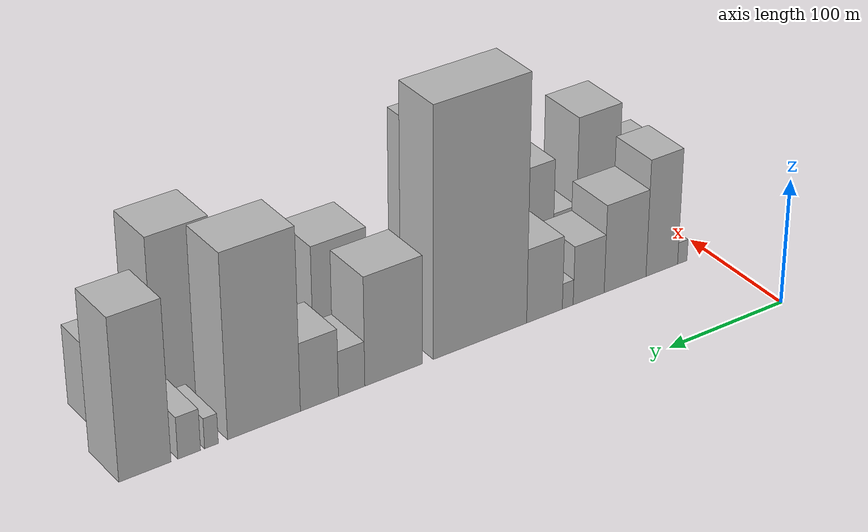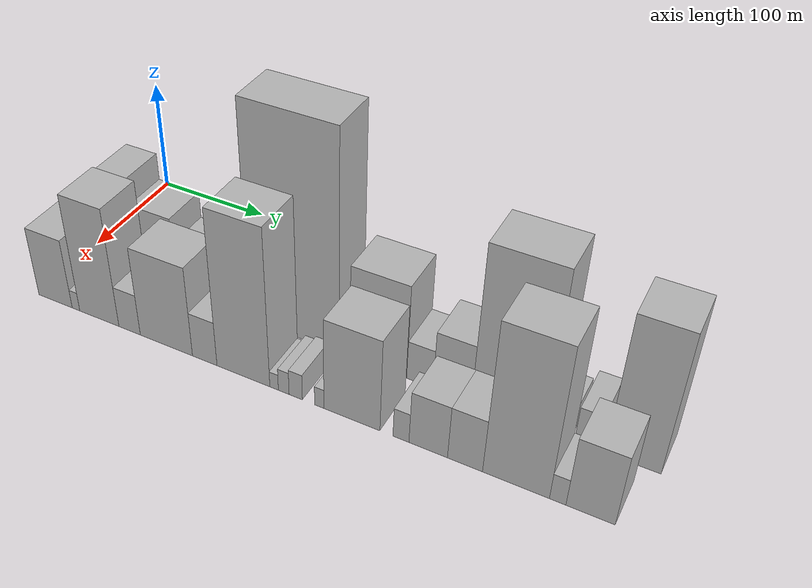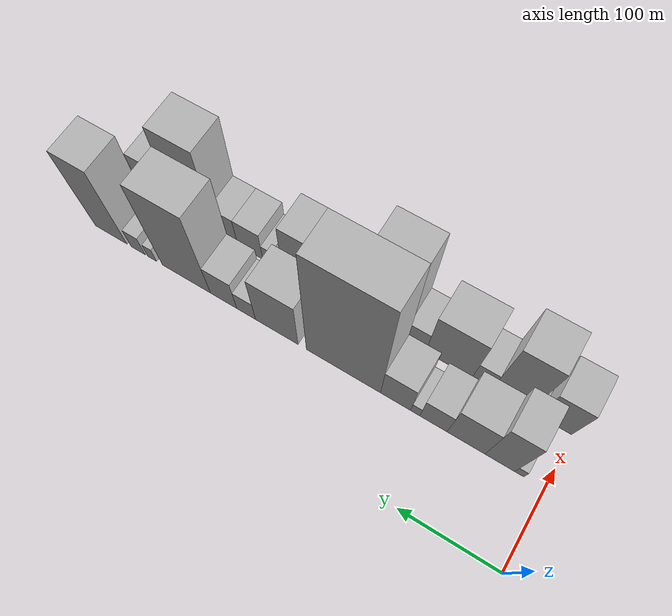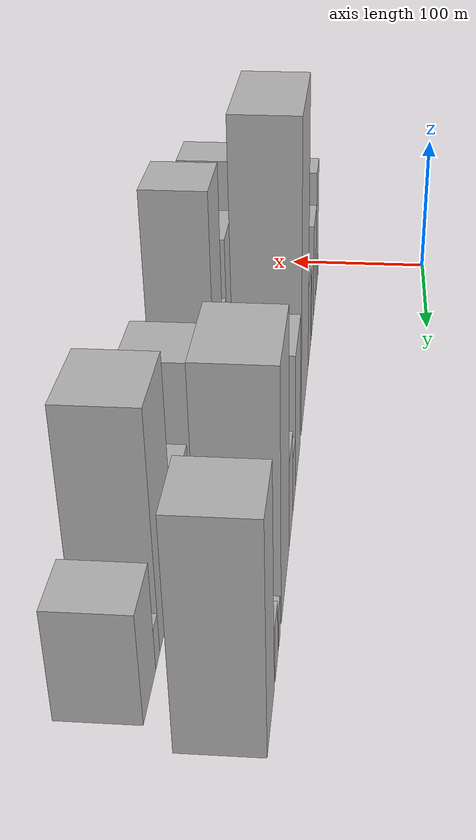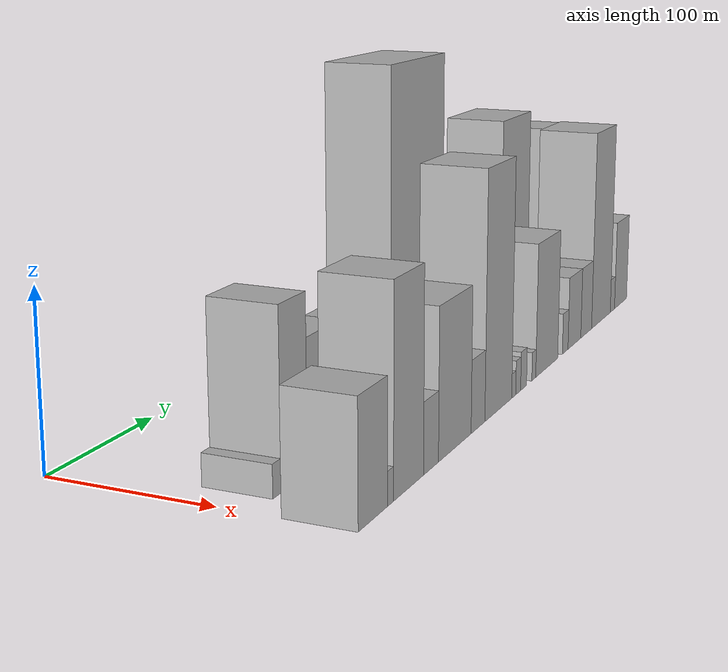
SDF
<sdf version="1.6">
 <world name="default">
  <model name="building_16">
   <static>1</static>
   <pose>100.0000 24.2655 0 0.000000 0.000000 0.000000</pose>
   <link name="link">
    <pose>0 0 9.00 0 0 0</pose>
    <collision name="collision"><geometry><box><size>40.0000 8.6766 18.0000</size></box></geometry></collision>
    <visual name="visual">
     <cast_shadows>0</cast_shadows>
     <geometry><box><size>40.0000 8.6766 18.0000</size></box></geometry>
     <material>
      <script>
       <uri>model://HANNAS_wall/materials/scripts</uri>
       <uri>model://HANNAS_wall/materials/textures</uri>
       <name>vrc/HANNAS_wall</name>
      </script>
     </material>
    </visual>
   </link>
  </model>
  <model name="building_17">
   <static>1</static>
   <pose>100.0000 43.0093 0 0.000000 0.000000 0.000000</pose>
   <link name="link">
    <pose>0 0 48.00 0 0 0</pose>
    <collision name="collision"><geometry><box><size>40.0000 28.8110 96.0000</size></box></geometry></collision>
    <visual name="visual">
     <cast_shadows>0</cast_shadows>
     <geometry><box><size>40.0000 28.8110 96.0000</size></box></geometry>
     <material>
      <script>
       <uri>model://HANNAS_wall/materials/scripts</uri>
       <uri>model://HANNAS_wall/materials/textures</uri>
       <name>vrc/HANNAS_wall</name>
      </script>
     </material>
    </visual>
   </link>
  </model>
  <model name="building_18">
   <static>1</static>
   <pose>100.0000 76.1650 0 0.000000 0.000000 0.000000</pose>
   <link name="link">
    <pose>0 0 36.00 0 0 0</pose>
    <collision name="collision"><geometry><box><size>40.0000 37.5004 72.0000</size></box></geometry></collision>
    <visual name="visual">
     <cast_shadows>0</cast_shadows>
     <geometry><box><size>40.0000 37.5004 72.0000</size></box></geometry>
     <material>
      <script>
       <uri>model://HANNAS_wall/materials/scripts</uri>
       <uri>model://HANNAS_wall/materials/textures</uri>
       <name>vrc/HANNAS_wall</name>
      </script>
     </material>
    </visual>
   </link>
  </model>
  <model name="building_19">
   <static>1</static>
   <pose>100.0000 108.5897 0 0.000000 0.000000 0.000000</pose>
   <link name="link">
    <pose>0 0 24.00 0 0 0</pose>
    <collision name="collision"><geometry><box><size>40.0000 27.3489 48.0000</size></box></geometry></collision>
    <visual name="visual">
     <cast_shadows>0</cast_shadows>
     <geometry><box><size>40.0000 27.3489 48.0000</size></box></geometry>
     <material>
      <script>
       <uri>model://HANNAS_wall/materials/scripts</uri>
       <uri>model://HANNAS_wall/materials/textures</uri>
       <name>vrc/HANNAS_wall</name>
      </script>
     </material>
    </visual>
   </link>
  </model>
  <model name="building_20">
   <static>1</static>
   <pose>100.0000 126.9915 0 0.000000 0.000000 0.000000</pose>
   <link name="link">
    <pose>0 0 10.50 0 0 0</pose>
    <collision name="collision"><geometry><box><size>40.0000 9.4548 21.0000</size></box></geometry></collision>
    <visual name="visual">
     <cast_shadows>0</cast_shadows>
     <geometry><box><size>40.0000 9.4548 21.0000</size></box></geometry>
     <material>
      <script>
       <uri>model://HANNAS_wall/materials/scripts</uri>
       <uri>model://HANNAS_wall/materials/textures</uri>
       <name>vrc/HANNAS_wall</name>
      </script>
     </material>
    </visual>
   </link>
  </model>
  <model name="building_21">
   <static>1</static>
   <pose>100.0000 147.1534 0 0.000000 0.000000 0.000000</pose>
   <link name="link">
    <pose>0 0 30.00 0 0 0</pose>
    <collision name="collision"><geometry><box><size>40.0000 30.8690 60.0000</size></box></geometry></collision>
    <visual name="visual">
     <cast_shadows>0</cast_shadows>
     <geometry><box><size>40.0000 30.8690 60.0000</size></box></geometry>
     <material>
      <script>
       <uri>model://HANNAS_wall/materials/scripts</uri>
       <uri>model://HANNAS_wall/materials/textures</uri>
       <name>vrc/HANNAS_wall</name>
      </script>
     </material>
    </visual>
   </link>
  </model>
  <model name="building_22">
   <static>1</static>
   <pose>100.0000 201.8062 0 0.000000 0.000000 0.000000</pose>
   <link name="link">
    <pose>0 0 99.00 0 0 0</pose>
    <collision name="collision"><geometry><box><size>40.0000 78.4366 198.0000</size></box></geometry></collision>
    <visual name="visual">
     <cast_shadows>0</cast_shadows>
     <geometry><box><size>40.0000 78.4366 198.0000</size></box></geometry>
     <material>
      <script>
       <uri>model://HANNAS_wall/materials/scripts</uri>
       <uri>model://HANNAS_wall/materials/textures</uri>
       <name>vrc/HANNAS_wall</name>
      </script>
     </material>
    </visual>
   </link>
  </model>
  <model name="building_23">
   <static>1</static>
   <pose>100.0000 273.3668 0 0.000000 0.000000 0.000000</pose>
   <link name="link">
    <pose>0 0 43.50 0 0 0</pose>
    <collision name="collision"><geometry><box><size>40.0000 46.6846 87.0000</size></box></geometry></collision>
    <visual name="visual">
     <cast_shadows>0</cast_shadows>
     <geometry><box><size>40.0000 46.6846 87.0000</size></box></geometry>
     <material>
      <script>
       <uri>model://HANNAS_wall/materials/scripts</uri>
       <uri>model://HANNAS_wall/materials/textures</uri>
       <name>vrc/HANNAS_wall</name>
      </script>
     </material>
    </visual>
   </link>
  </model>
  <model name="building_24">
   <static>1</static>
   <pose>100.0000 307.2393 0 0.000000 0.000000 0.000000</pose>
   <link name="link">
    <pose>0 0 18.00 0 0 0</pose>
    <collision name="collision"><geometry><box><size>40.0000 21.0604 36.0000</size></box></geometry></collision>
    <visual name="visual">
     <cast_shadows>0</cast_shadows>
     <geometry><box><size>40.0000 21.0604 36.0000</size></box></geometry>
     <material>
      <script>
       <uri>model://HANNAS_wall/materials/scripts</uri>
       <uri>model://HANNAS_wall/materials/textures</uri>
       <name>vrc/HANNAS_wall</name>
      </script>
     </material>
    </visual>
   </link>
  </model>
  <model name="building_25">
   <static>1</static>
   <pose>100.0000 332.6892 0 0.000000 0.000000 0.000000</pose>
   <link name="link">
    <pose>0 0 27.00 0 0 0</pose>
    <collision name="collision"><geometry><box><size>40.0000 29.8393 54.0000</size></box></geometry></collision>
    <visual name="visual">
     <cast_shadows>0</cast_shadows>
     <geometry><box><size>40.0000 29.8393 54.0000</size></box></geometry>
     <material>
      <script>
       <uri>model://HANNAS_wall/materials/scripts</uri>
       <uri>model://HANNAS_wall/materials/textures</uri>
       <name>vrc/HANNAS_wall</name>
      </script>
     </material>
    </visual>
   </link>
  </model>
  <model name="building_26">
   <static>1</static>
   <pose>100.0000 375.5573 0 0.000000 0.000000 0.000000</pose>
   <link name="link">
    <pose>0 0 72.00 0 0 0</pose>
    <collision name="collision"><geometry><box><size>40.0000 55.8970 144.0000</size></box></geometry></collision>
    <visual name="visual">
     <cast_shadows>0</cast_shadows>
     <geometry><box><size>40.0000 55.8970 144.0000</size></box></geometry>
     <material>
      <script>
       <uri>model://HANNAS_wall/materials/scripts</uri>
       <uri>model://HANNAS_wall/materials/textures</uri>
       <name>vrc/HANNAS_wall</name>
      </script>
     </material>
    </visual>
   </link>
  </model>
  <model name="building_27">
   <static>1</static>
   <pose>100.0000 415.6739 0 0.000000 0.000000 0.000000</pose>
   <link name="link">
    <pose>0 0 12.00 0 0 0</pose>
    <collision name="collision"><geometry><box><size>40.0000 10.3362 24.0000</size></box></geometry></collision>
    <visual name="visual">
     <cast_shadows>0</cast_shadows>
     <geometry><box><size>40.0000 10.3362 24.0000</size></box></geometry>
     <material>
      <script>
       <uri>model://HANNAS_wall/materials/scripts</uri>
       <uri>model://HANNAS_wall/materials/textures</uri>
       <name>vrc/HANNAS_wall</name>
      </script>
     </material>
    </visual>
   </link>
  </model>
  <model name="building_28">
   <static>1</static>
   <pose>100.0000 432.2948 0 0.000000 0.000000 0.000000</pose>
   <link name="link">
    <pose>0 0 16.50 0 0 0</pose>
    <collision name="collision"><geometry><box><size>40.0000 16.9056 33.0000</size></box></geometry></collision>
    <visual name="visual">
     <cast_shadows>0</cast_shadows>
     <geometry><box><size>40.0000 16.9056 33.0000</size></box></geometry>
     <material>
      <script>
       <uri>model://HANNAS_wall/materials/scripts</uri>
       <uri>model://HANNAS_wall/materials/textures</uri>
       <name>vrc/HANNAS_wall</name>
      </script>
     </material>
    </visual>
   </link>
  </model>
  <model name="building_29">
   <static>1</static>
   <pose>100.0000 464.8829 0 0.000000 0.000000 0.000000</pose>
   <link name="link">
    <pose>0 0 63.00 0 0 0</pose>
    <collision name="collision"><geometry><box><size>40.0000 38.2706 126.0000</size></box></geometry></collision>
    <visual name="visual">
     <cast_shadows>0</cast_shadows>
     <geometry><box><size>40.0000 38.2706 126.0000</size></box></geometry>
     <material>
      <script>
       <uri>model://HANNAS_wall/materials/scripts</uri>
       <uri>model://HANNAS_wall/materials/textures</uri>
       <name>vrc/HANNAS_wall</name>
      </script>
     </material>
    </visual>
   </link>
  </model>
  <model name="building_45">
   <static>1</static>
   <pose>155.0000 17.0346 0 0.000000 0.000000 0.000000</pose>
   <link name="link">
    <pose>0 0 33.00 0 0 0</pose>
    <collision name="collision"><geometry><box><size>40.0000 33.3527 66.0000</size></box></geometry></collision>
    <visual name="visual">
     <cast_shadows>0</cast_shadows>
     <geometry><box><size>40.0000 33.3527 66.0000</size></box></geometry>
     <material>
      <script>
       <uri>model://HANNAS_wall/materials/scripts</uri>
       <uri>model://HANNAS_wall/materials/textures</uri>
       <name>vrc/HANNAS_wall</name>
      </script>
     </material>
    </visual>
   </link>
  </model>
  <model name="building_46">
   <static>1</static>
   <pose>155.0000 37.4321 0 0.000000 0.000000 0.000000</pose>
   <link name="link">
    <pose>0 0 9.00 0 0 0</pose>
    <collision name="collision"><geometry><box><size>40.0000 7.4423 18.0000</size></box></geometry></collision>
    <visual name="visual">
     <cast_shadows>0</cast_shadows>
     <geometry><box><size>40.0000 7.4423 18.0000</size></box></geometry>
     <material>
      <script>
       <uri>model://HANNAS_wall/materials/scripts</uri>
       <uri>model://HANNAS_wall/materials/textures</uri>
       <name>vrc/HANNAS_wall</name>
      </script>
     </material>
    </visual>
   </link>
  </model>
  <model name="building_47">
   <static>1</static>
   <pose>155.0000 60.0776 0 0.000000 0.000000 0.000000</pose>
   <link name="link">
    <pose>0 0 55.50 0 0 0</pose>
    <collision name="collision"><geometry><box><size>40.0000 37.8486 111.0000</size></box></geometry></collision>
    <visual name="visual">
     <cast_shadows>0</cast_shadows>
     <geometry><box><size>40.0000 37.8486 111.0000</size></box></geometry>
     <material>
      <script>
       <uri>model://HANNAS_wall/materials/scripts</uri>
       <uri>model://HANNAS_wall/materials/textures</uri>
       <name>vrc/HANNAS_wall</name>
      </script>
     </material>
    </visual>
   </link>
  </model>
  <model name="building_48">
   <static>1</static>
   <pose>155.0000 89.0997 0 0.000000 0.000000 0.000000</pose>
   <link name="link">
    <pose>0 0 19.50 0 0 0</pose>
    <collision name="collision"><geometry><box><size>40.0000 20.1956 39.0000</size></box></geometry></collision>
    <visual name="visual">
     <cast_shadows>0</cast_shadows>
     <geometry><box><size>40.0000 20.1956 39.0000</size></box></geometry>
     <material>
      <script>
       <uri>model://HANNAS_wall/materials/scripts</uri>
       <uri>model://HANNAS_wall/materials/textures</uri>
       <name>vrc/HANNAS_wall</name>
      </script>
     </material>
    </visual>
   </link>
  </model>
  <model name="building_49">
   <static>1</static>
   <pose>155.0000 123.0417 0 0.000000 0.000000 0.000000</pose>
   <link name="link">
    <pose>0 0 42.00 0 0 0</pose>
    <collision name="collision"><geometry><box><size>40.0000 47.6884 84.0000</size></box></geometry></collision>
    <visual name="visual">
     <cast_shadows>0</cast_shadows>
     <geometry><box><size>40.0000 47.6884 84.0000</size></box></geometry>
     <material>
      <script>
       <uri>model://HANNAS_wall/materials/scripts</uri>
       <uri>model://HANNAS_wall/materials/textures</uri>
       <name>vrc/HANNAS_wall</name>
      </script>
     </material>
    </visual>
   </link>
  </model>
  <model name="building_50">
   <static>1</static>
   <pose>155.0000 157.7410 0 0.000000 0.000000 0.000000</pose>
   <link name="link">
    <pose>0 0 21.00 0 0 0</pose>
    <collision name="collision"><geometry><box><size>40.0000 21.7101 42.0000</size></box></geometry></collision>
    <visual name="visual">
     <cast_shadows>0</cast_shadows>
     <geometry><box><size>40.0000 21.7101 42.0000</size></box></geometry>
     <material>
      <script>
       <uri>model://HANNAS_wall/materials/scripts</uri>
       <uri>model://HANNAS_wall/materials/textures</uri>
       <name>vrc/HANNAS_wall</name>
      </script>
     </material>
    </visual>
   </link>
  </model>
  <model name="building_51">
   <static>1</static>
   <pose>155.0000 191.2912 0 0.000000 0.000000 0.000000</pose>
   <link name="link">
    <pose>0 0 72.00 0 0 0</pose>
    <collision name="collision"><geometry><box><size>40.0000 45.3903 144.0000</size></box></geometry></collision>
    <visual name="visual">
     <cast_shadows>0</cast_shadows>
     <geometry><box><size>40.0000 45.3903 144.0000</size></box></geometry>
     <material>
      <script>
       <uri>model://HANNAS_wall/materials/scripts</uri>
       <uri>model://HANNAS_wall/materials/textures</uri>
       <name>vrc/HANNAS_wall</name>
      </script>
     </material>
    </visual>
   </link>
  </model>
  <model name="building_52">
   <static>1</static>
   <pose>155.0000 217.5734 0 0.000000 0.000000 0.000000</pose>
   <link name="link">
    <pose>0 0 7.50 0 0 0</pose>
    <collision name="collision"><geometry><box><size>40.0000 7.1741 15.0000</size></box></geometry></collision>
    <visual name="visual">
     <cast_shadows>0</cast_shadows>
     <geometry><box><size>40.0000 7.1741 15.0000</size></box></geometry>
     <material>
      <script>
       <uri>model://HANNAS_wall/materials/scripts</uri>
       <uri>model://HANNAS_wall/materials/textures</uri>
       <name>vrc/HANNAS_wall</name>
      </script>
     </material>
    </visual>
   </link>
  </model>
  <model name="building_53">
   <static>1</static>
   <pose>155.0000 225.6127 0 0.000000 0.000000 0.000000</pose>
   <link name="link">
    <pose>0 0 10.50 0 0 0</pose>
    <collision name="collision"><geometry><box><size>40.0000 8.9045 21.0000</size></box></geometry></collision>
    <visual name="visual">
     <cast_shadows>0</cast_shadows>
     <geometry><box><size>40.0000 8.9045 21.0000</size></box></geometry>
     <material>
      <script>
       <uri>model://HANNAS_wall/materials/scripts</uri>
       <uri>model://HANNAS_wall/materials/textures</uri>
       <name>vrc/HANNAS_wall</name>
      </script>
     </material>
    </visual>
   </link>
  </model>
  <model name="building_54">
   <static>1</static>
   <pose>155.0000 235.5404 0 0.000000 0.000000 0.000000</pose>
   <link name="link">
    <pose>0 0 12.00 0 0 0</pose>
    <collision name="collision"><geometry><box><size>40.0000 10.9510 24.0000</size></box></geometry></collision>
    <visual name="visual">
     <cast_shadows>0</cast_shadows>
     <geometry><box><size>40.0000 10.9510 24.0000</size></box></geometry>
     <material>
      <script>
       <uri>model://HANNAS_wall/materials/scripts</uri>
       <uri>model://HANNAS_wall/materials/textures</uri>
       <name>vrc/HANNAS_wall</name>
      </script>
     </material>
    </visual>
   </link>
  </model>
  <model name="building_55">
   <static>1</static>
   <pose>155.0000 254.7776 0 0.000000 0.000000 0.000000</pose>
   <link name="link">
    <pose>0 0 9.00 0 0 0</pose>
    <collision name="collision"><geometry><box><size>40.0000 7.5234 18.0000</size></box></geometry></collision>
    <visual name="visual">
     <cast_shadows>0</cast_shadows>
     <geometry><box><size>40.0000 7.5234 18.0000</size></box></geometry>
     <material>
      <script>
       <uri>model://HANNAS_wall/materials/scripts</uri>
       <uri>model://HANNAS_wall/materials/textures</uri>
       <name>vrc/HANNAS_wall</name>
      </script>
     </material>
    </visual>
   </link>
  </model>
  <model name="building_56">
   <static>1</static>
   <pose>155.0000 280.6615 0 0.000000 0.000000 0.000000</pose>
   <link name="link">
    <pose>0 0 42.00 0 0 0</pose>
    <collision name="collision"><geometry><box><size>40.0000 44.2444 84.0000</size></box></geometry></collision>
    <visual name="visual">
     <cast_shadows>0</cast_shadows>
     <geometry><box><size>40.0000 44.2444 84.0000</size></box></geometry>
     <material>
      <script>
       <uri>model://HANNAS_wall/materials/scripts</uri>
       <uri>model://HANNAS_wall/materials/textures</uri>
       <name>vrc/HANNAS_wall</name>
      </script>
     </material>
    </visual>
   </link>
  </model>
  <model name="building_57">
   <static>1</static>
   <pose>155.0000 318.8714 0 0.000000 0.000000 0.000000</pose>
   <link name="link">
    <pose>0 0 13.50 0 0 0</pose>
    <collision name="collision"><geometry><box><size>40.0000 12.1755 27.0000</size></box></geometry></collision>
    <visual name="visual">
     <cast_shadows>0</cast_shadows>
     <geometry><box><size>40.0000 12.1755 27.0000</size></box></geometry>
     <material>
      <script>
       <uri>model://HANNAS_wall/materials/scripts</uri>
       <uri>model://HANNAS_wall/materials/textures</uri>
       <name>vrc/HANNAS_wall</name>
      </script>
     </material>
    </visual>
   </link>
  </model>
  <model name="building_58">
   <static>1</static>
   <pose>155.0000 339.3292 0 0.000000 0.000000 0.000000</pose>
   <link name="link">
    <pose>0 0 24.00 0 0 0</pose>
    <collision name="collision"><geometry><box><size>40.0000 28.7402 48.0000</size></box></geometry></collision>
    <visual name="visual">
     <cast_shadows>0</cast_shadows>
     <geometry><box><size>40.0000 28.7402 48.0000</size></box></geometry>
     <material>
      <script>
       <uri>model://HANNAS_wall/materials/scripts</uri>
       <uri>model://HANNAS_wall/materials/textures</uri>
       <name>vrc/HANNAS_wall</name>
      </script>
     </material>
    </visual>
   </link>
  </model>
  <model name="building_59">
   <static>1</static>
   <pose>155.0000 366.4249 0 0.000000 0.000000 0.000000</pose>
   <link name="link">
    <pose>0 0 24.00 0 0 0</pose>
    <collision name="collision"><geometry><box><size>40.0000 25.4513 48.0000</size></box></geometry></collision>
    <visual name="visual">
     <cast_shadows>0</cast_shadows>
     <geometry><box><size>40.0000 25.4513 48.0000</size></box></geometry>
     <material>
      <script>
       <uri>model://HANNAS_wall/materials/scripts</uri>
       <uri>model://HANNAS_wall/materials/textures</uri>
       <name>vrc/HANNAS_wall</name>
      </script>
     </material>
    </visual>
   </link>
  </model>
  <model name="building_60">
   <static>1</static>
   <pose>155.0000 402.5897 0 0.000000 0.000000 0.000000</pose>
   <link name="link">
    <pose>0 0 67.50 0 0 0</pose>
    <collision name="collision"><geometry><box><size>40.0000 46.8783 135.0000</size></box></geometry></collision>
    <visual name="visual">
     <cast_shadows>0</cast_shadows>
     <geometry><box><size>40.0000 46.8783 135.0000</size></box></geometry>
     <material>
      <script>
       <uri>model://HANNAS_wall/materials/scripts</uri>
       <uri>model://HANNAS_wall/materials/textures</uri>
       <name>vrc/HANNAS_wall</name>
      </script>
     </material>
    </visual>
   </link>
  </model>
  <model name="building_61">
   <static>1</static>
   <pose>155.0000 431.6239 0 0.000000 0.000000 0.000000</pose>
   <link name="link">
    <pose>0 0 12.00 0 0 0</pose>
    <collision name="collision"><geometry><box><size>40.0000 11.1899 24.0000</size></box></geometry></collision>
    <visual name="visual">
     <cast_shadows>0</cast_shadows>
     <geometry><box><size>40.0000 11.1899 24.0000</size></box></geometry>
     <material>
      <script>
       <uri>model://HANNAS_wall/materials/scripts</uri>
       <uri>model://HANNAS_wall/materials/textures</uri>
       <name>vrc/HANNAS_wall</name>
      </script>
     </material>
    </visual>
   </link>
  </model>
  <model name="building_62">
   <static>1</static>
   <pose>155.0000 453.6044 0 0.000000 0.000000 0.000000</pose>
   <link name="link">
    <pose>0 0 31.50 0 0 0</pose>
    <collision name="collision"><geometry><box><size>40.0000 32.7712 63.0000</size></box></geometry></collision>
    <visual name="visual">
     <cast_shadows>0</cast_shadows>
     <geometry><box><size>40.0000 32.7712 63.0000</size></box></geometry>
     <material>
      <script>
       <uri>model://HANNAS_wall/materials/scripts</uri>
       <uri>model://HANNAS_wall/materials/textures</uri>
       <name>vrc/HANNAS_wall</name>
      </script>
     </material>
    </visual>
   </link>
  </model>
 </world>
</sdf>
